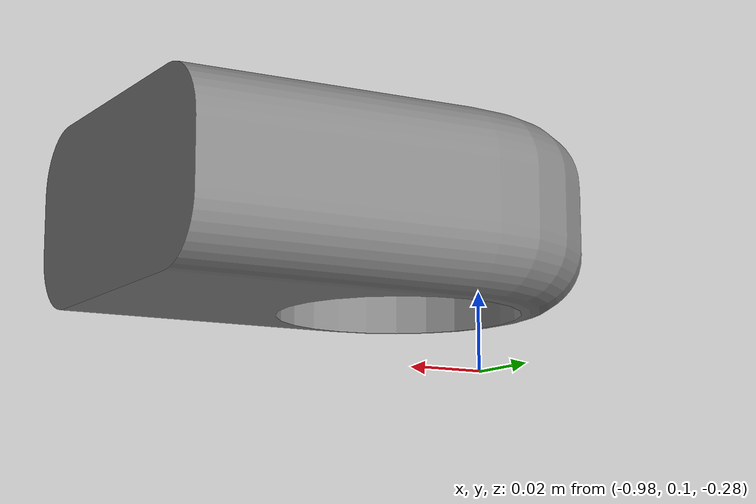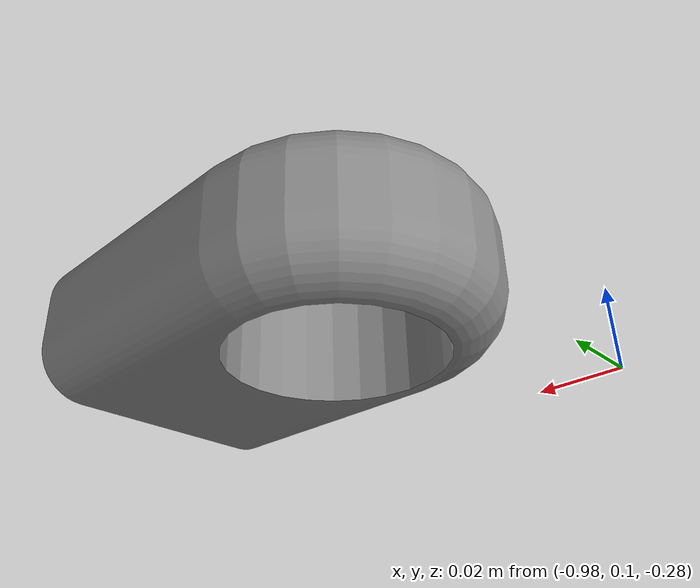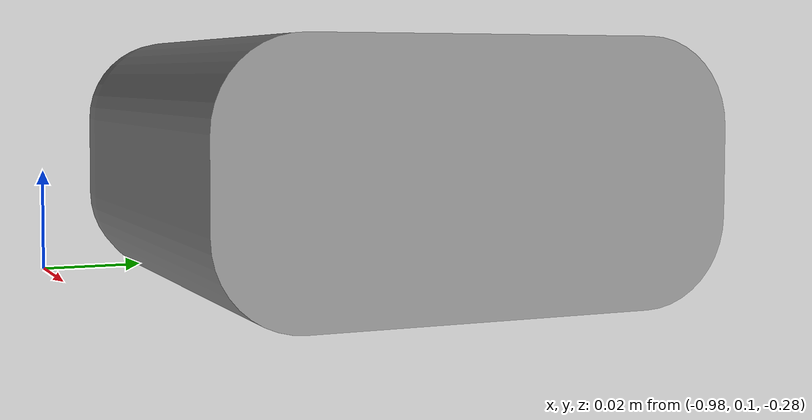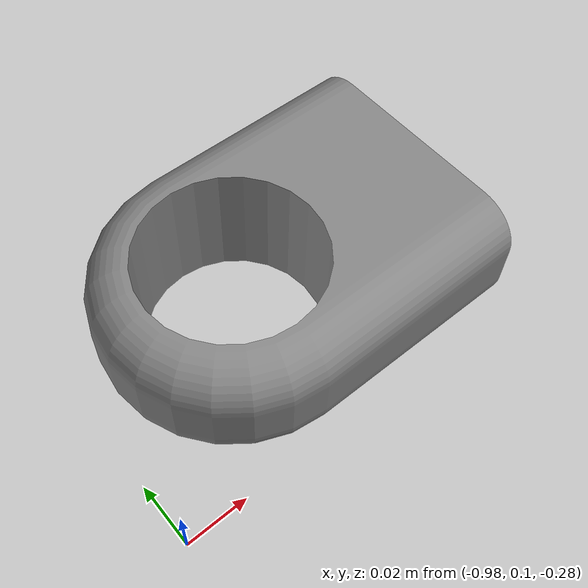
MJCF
<mujoco model="original-122">
  <default>
    <default class="visual">
      <geom group="2" type="mesh" contype="0" conaffinity="0"/>
    </default>
    <default class="collision">
      <geom group="3" type="mesh"/>
    </default>
  </default>
  <asset>
    <material name="material_0_0" specular="0.06666666666666667" shininess="0.03" rgba="0.5294117647058824 0.5294117647058824 0.5294117647058824 1"/>
    <mesh file="original-122.obj"/>
  </asset>
  <worldbody>
    <body name="original-122">
      <geom material="material_0_0" mesh="original-122" class="visual"/>
      <geom mesh="original-122" class="collision"/>
    </body>
  </worldbody>
</mujoco>
